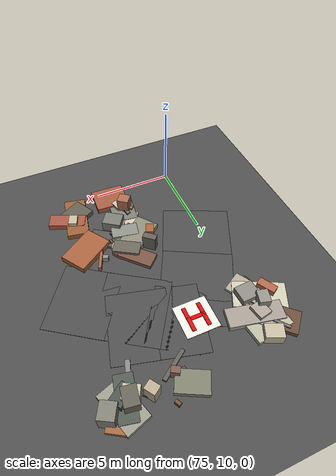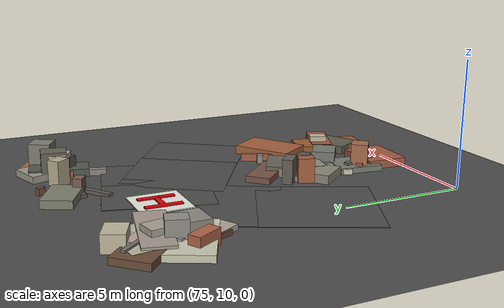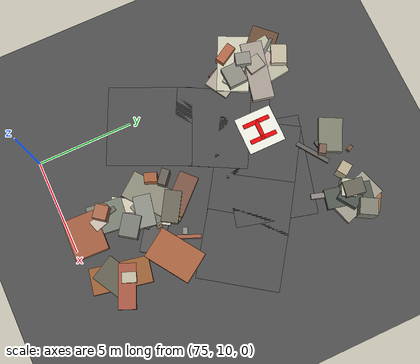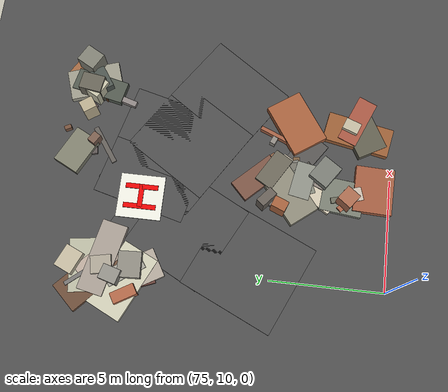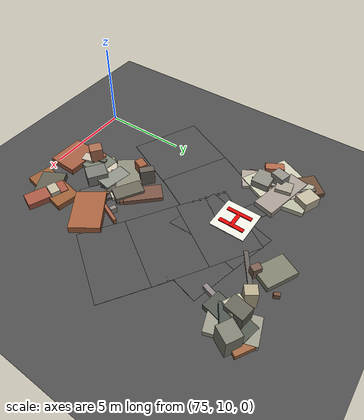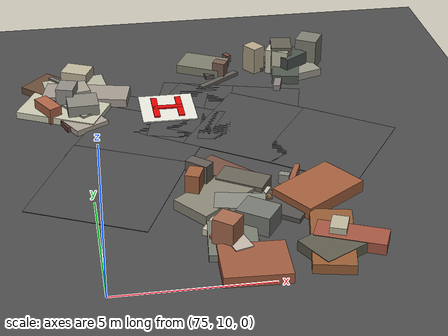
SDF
<sdf version="1.6">
 <world name="navitas_arena">
  <model name="ground_plane">
   <static>true</static>
   <link name="link">
    <collision name="collision">
     <geometry><plane><normal>0 0 1</normal><size>400 400</size></plane></geometry>
     <surface><friction><ode><mu>0.800</mu><mu2>0.800</mu2></ode></friction></surface>
    </collision>
    <visual name="visual">
     <cast_shadows>false</cast_shadows>
     <geometry><plane><normal>0 0 1</normal><size>400 400</size></plane></geometry>
     <material>
      <specular>0.04 0.04 0.04 1</specular>
      <script>
       <uri>file://media/materials/scripts/navitas_asphalt.material</uri>
       <name>Navitas/RealArenaAsphalt</name>
      </script>
     </material>
    </visual>
   </link>
  </model>
  <model name="road_zor_1_18">
   <static>true</static>
   <pose>75.516 15.912 0.040 0 0 1.142</pose>
   <link name="link">
    <collision name="col"><geometry><box><size>4.392 4.200 0.020</size></box></geometry></collision>
    <visual name="vis">
     <geometry><box><size>4.392 4.200 0.020</size></box></geometry>
     <material>
      <specular>0.04 0.04 0.04 1</specular>
      <script>
       <uri>file://media/materials/scripts/navitas_asphalt.material</uri>
       <name>Navitas/RealArenaAsphalt</name>
      </script>
     </material>
    </visual>
   </link>
  </model>
  <model name="road_zor_1_19">
   <static>true</static>
   <pose>76.927 18.815 0.040 0 0 1.090</pose>
   <link name="link">
    <collision name="col"><geometry><box><size>3.866 4.200 0.020</size></box></geometry></collision>
    <visual name="vis">
     <geometry><box><size>3.866 4.200 0.020</size></box></geometry>
     <material>
      <specular>0.04 0.04 0.04 1</specular>
      <script>
       <uri>file://media/materials/scripts/navitas_asphalt.material</uri>
       <name>Navitas/RealArenaAsphalt</name>
      </script>
     </material>
    </visual>
   </link>
  </model>
  <model name="road_zor_1_20">
   <static>true</static>
   <pose>77.845 20.565 0.040 0 0 1.083</pose>
   <link name="link">
    <collision name="col"><geometry><box><size>1.886 4.200 0.020</size></box></geometry></collision>
    <visual name="vis">
     <geometry><box><size>1.886 4.200 0.020</size></box></geometry>
     <material>
      <specular>0.04 0.04 0.04 1</specular>
      <script>
       <uri>file://media/materials/scripts/navitas_asphalt.material</uri>
       <name>Navitas/RealArenaAsphalt</name>
      </script>
     </material>
    </visual>
   </link>
  </model>
  <model name="road_zor_2_17">
   <static>true</static>
   <pose>83.343 17.578 0.040 0 0 2.539</pose>
   <link name="link">
    <collision name="col"><geometry><box><size>3.519 4.200 0.020</size></box></geometry></collision>
    <visual name="vis">
     <geometry><box><size>3.519 4.200 0.020</size></box></geometry>
     <material>
      <specular>0.04 0.04 0.04 1</specular>
      <script>
       <uri>file://media/materials/scripts/navitas_asphalt.material</uri>
       <name>Navitas/RealArenaAsphalt</name>
      </script>
     </material>
    </visual>
   </link>
  </model>
  <model name="road_zor_2_18">
   <static>true</static>
   <pose>81.043 19.110 0.040 0 0 2.567</pose>
   <link name="link">
    <collision name="col"><geometry><box><size>3.809 4.200 0.020</size></box></geometry></collision>
    <visual name="vis">
     <geometry><box><size>3.809 4.200 0.020</size></box></geometry>
     <material>
      <specular>0.04 0.04 0.04 1</specular>
      <script>
       <uri>file://media/materials/scripts/navitas_asphalt.material</uri>
       <name>Navitas/RealArenaAsphalt</name>
      </script>
     </material>
    </visual>
   </link>
  </model>
  <model name="road_zor_2_19">
   <static>true</static>
   <pose>78.949 20.450 0.040 0 0 2.579</pose>
   <link name="link">
    <collision name="col"><geometry><box><size>2.964 4.200 0.020</size></box></geometry></collision>
    <visual name="vis">
     <geometry><box><size>2.964 4.200 0.020</size></box></geometry>
     <material>
      <specular>0.04 0.04 0.04 1</specular>
      <script>
       <uri>file://media/materials/scripts/navitas_asphalt.material</uri>
       <name>Navitas/RealArenaAsphalt</name>
      </script>
     </material>
    </visual>
   </link>
  </model>
  <model name="road_zor_3_27">
   <static>true</static>
   <pose>81.046 20.220 0.040 0 0 2.888</pose>
   <link name="link">
    <collision name="col"><geometry><box><size>3.449 4.200 0.020</size></box></geometry></collision>
    <visual name="vis">
     <geometry><box><size>3.449 4.200 0.020</size></box></geometry>
     <material>
      <specular>0.04 0.04 0.04 1</specular>
      <script>
       <uri>file://media/materials/scripts/navitas_asphalt.material</uri>
       <name>Navitas/RealArenaAsphalt</name>
      </script>
     </material>
    </visual>
   </link>
  </model>
  <model name="road_zor_3_28">
   <static>true</static>
   <pose>78.944 20.770 0.040 0 0 2.883</pose>
   <link name="link">
    <collision name="col"><geometry><box><size>2.696 4.200 0.020</size></box></geometry></collision>
    <visual name="vis">
     <geometry><box><size>2.696 4.200 0.020</size></box></geometry>
     <material>
      <specular>0.04 0.04 0.04 1</specular>
      <script>
       <uri>file://media/materials/scripts/navitas_asphalt.material</uri>
       <name>Navitas/RealArenaAsphalt</name>
      </script>
     </material>
    </visual>
   </link>
  </model>
  <model name="deb_zor_9">
   <static>true</static>
   <pose>79.143 15.304 0.000 0 0 0</pose>
   <link name="link">
    <collision name="col_0">
     <pose>-0.777 -0.560 0.061 0.000 0.000 -0.586</pose>
     <geometry><box><size>0.272 0.231 0.122</size></box></geometry>
    </collision>
    <visual name="vis_0">
     <pose>-0.777 -0.560 0.061 0.000 0.000 -0.586</pose>
     <geometry><box><size>0.272 0.231 0.122</size></box></geometry>
     <material>
      <ambient>0.51 0.47 0.43 1</ambient>
      <diffuse>0.56 0.51 0.46 1</diffuse>
      <specular>0.05 0.05 0.045 1</specular>
     </material>
    </visual>
    <collision name="col_1">
     <pose>0.351 0.621 0.128 0.000 0.000 -0.811</pose>
     <geometry><box><size>2.161 1.004 0.256</size></box></geometry>
    </collision>
    <visual name="vis_1">
     <pose>0.351 0.621 0.128 0.000 0.000 -0.811</pose>
     <geometry><box><size>2.161 1.004 0.256</size></box></geometry>
     <material>
      <ambient>0.45 0.31 0.25 1</ambient>
      <diffuse>0.48 0.33 0.27 1</diffuse>
      <specular>0.05 0.05 0.045 1</specular>
     </material>
    </visual>
    <collision name="col_2">
     <pose>-0.678 0.145 0.497 0.000 0.000 -0.711</pose>
     <geometry><box><size>0.813 0.415 0.994</size></box></geometry>
    </collision>
    <visual name="vis_2">
     <pose>-0.678 0.145 0.497 0.000 0.000 -0.711</pose>
     <geometry><box><size>0.813 0.415 0.994</size></box></geometry>
     <material>
      <ambient>0.37 0.35 0.32 1</ambient>
      <diffuse>0.40 0.37 0.34 1</diffuse>
      <specular>0.05 0.05 0.045 1</specular>
     </material>
    </visual>
    <collision name="col_3">
     <pose>-0.808 -0.139 0.113 0.000 0.000 -0.683</pose>
     <geometry><box><size>0.226 0.174 0.225</size></box></geometry>
    </collision>
    <visual name="vis_3">
     <pose>-0.808 -0.139 0.113 0.000 0.000 -0.683</pose>
     <geometry><box><size>0.226 0.174 0.225</size></box></geometry>
     <material>
      <ambient>0.48 0.46 0.45 1</ambient>
      <diffuse>0.52 0.50 0.49 1</diffuse>
      <specular>0.05 0.05 0.045 1</specular>
     </material>
    </visual>
    <collision name="col_4">
     <pose>0.744 -0.083 0.209 0.000 0.000 -0.546</pose>
     <geometry><box><size>1.639 0.873 0.417</size></box></geometry>
    </collision>
    <visual name="vis_4">
     <pose>0.744 -0.083 0.209 0.000 0.000 -0.546</pose>
     <geometry><box><size>1.639 0.873 0.417</size></box></geometry>
     <material>
      <ambient>0.39 0.37 0.33 1</ambient>
      <diffuse>0.42 0.40 0.35 1</diffuse>
      <specular>0.05 0.05 0.045 1</specular>
     </material>
    </visual>
    <collision name="col_5">
     <pose>-0.922 -0.452 0.499 0.000 0.000 -0.389</pose>
     <geometry><box><size>0.479 0.646 0.997</size></box></geometry>
    </collision>
    <visual name="vis_5">
     <pose>-0.922 -0.452 0.499 0.000 0.000 -0.389</pose>
     <geometry><box><size>0.479 0.646 0.997</size></box></geometry>
     <material>
      <ambient>0.60 0.35 0.22 1</ambient>
      <diffuse>0.64 0.38 0.24 1</diffuse>
      <specular>0.05 0.05 0.045 1</specular>
     </material>
    </visual>
   </link>
  </model>
  <model name="deb_zor_138">
   <static>true</static>
   <pose>79.585 14.010 0.000 0 0 0</pose>
   <link name="link">
    <collision name="col_0">
     <pose>-0.081 -0.888 0.137 0.000 0.000 -0.403</pose>
     <geometry><box><size>0.435 0.454 0.273</size></box></geometry>
    </collision>
    <visual name="vis_0">
     <pose>-0.081 -0.888 0.137 0.000 0.000 -0.403</pose>
     <geometry><box><size>0.435 0.454 0.273</size></box></geometry>
     <material>
      <ambient>0.52 0.48 0.45 1</ambient>
      <diffuse>0.56 0.52 0.49 1</diffuse>
      <specular>0.05 0.05 0.045 1</specular>
     </material>
    </visual>
    <collision name="col_1">
     <pose>-0.141 -0.272 0.111 0.000 0.000 1.011</pose>
     <geometry><box><size>3.142 1.066 0.221</size></box></geometry>
    </collision>
    <visual name="vis_1">
     <pose>-0.141 -0.272 0.111 0.000 0.000 1.011</pose>
     <geometry><box><size>3.142 1.066 0.221</size></box></geometry>
     <material>
      <ambient>0.75 0.71 0.63 1</ambient>
      <diffuse>0.81 0.77 0.69 1</diffuse>
      <specular>0.05 0.05 0.045 1</specular>
     </material>
    </visual>
    <collision name="col_2">
     <pose>-0.728 0.439 0.182 0.000 0.000 0.664</pose>
     <geometry><box><size>2.426 1.426 0.363</size></box></geometry>
    </collision>
    <visual name="vis_2">
     <pose>-0.728 0.439 0.182 0.000 0.000 0.664</pose>
     <geometry><box><size>2.426 1.426 0.363</size></box></geometry>
     <material>
      <ambient>0.51 0.50 0.43 1</ambient>
      <diffuse>0.55 0.54 0.47 1</diffuse>
      <specular>0.05 0.05 0.045 1</specular>
     </material>
    </visual>
    <collision name="col_3">
     <pose>0.852 0.250 0.114 0.000 0.000 1.624</pose>
     <geometry><box><size>0.289 0.395 0.227</size></box></geometry>
    </collision>
    <visual name="vis_3">
     <pose>0.852 0.250 0.114 0.000 0.000 1.624</pose>
     <geometry><box><size>0.289 0.395 0.227</size></box></geometry>
     <material>
      <ambient>0.44 0.33 0.23 1</ambient>
      <diffuse>0.47 0.36 0.25 1</diffuse>
      <specular>0.05 0.05 0.045 1</specular>
     </material>
    </visual>
    <collision name="col_4">
     <pose>-0.286 0.372 0.130 0.000 0.000 1.945</pose>
     <geometry><box><size>1.850 1.216 0.260</size></box></geometry>
    </collision>
    <visual name="vis_4">
     <pose>-0.286 0.372 0.130 0.000 0.000 1.945</pose>
     <geometry><box><size>1.850 1.216 0.260</size></box></geometry>
     <material>
      <ambient>0.49 0.49 0.44 1</ambient>
      <diffuse>0.52 0.53 0.48 1</diffuse>
      <specular>0.05 0.05 0.045 1</specular>
     </material>
    </visual>
    <collision name="col_5">
     <pose>-0.348 0.099 0.127 0.000 0.000 0.071</pose>
     <geometry><box><size>2.286 1.078 0.255</size></box></geometry>
    </collision>
    <visual name="vis_5">
     <pose>-0.348 0.099 0.127 0.000 0.000 0.071</pose>
     <geometry><box><size>2.286 1.078 0.255</size></box></geometry>
     <material>
      <ambient>0.43 0.42 0.38 1</ambient>
      <diffuse>0.46 0.45 0.41 1</diffuse>
      <specular>0.05 0.05 0.045 1</specular>
     </material>
    </visual>
    <collision name="col_6">
     <pose>-0.348 -0.159 0.182 0.000 0.000 0.605</pose>
     <geometry><box><size>0.593 0.478 0.365</size></box></geometry>
    </collision>
    <visual name="vis_6">
     <pose>-0.348 -0.159 0.182 0.000 0.000 0.605</pose>
     <geometry><box><size>0.593 0.478 0.365</size></box></geometry>
     <material>
      <ambient>0.65 0.62 0.53 1</ambient>
      <diffuse>0.70 0.67 0.57 1</diffuse>
      <specular>0.05 0.05 0.045 1</specular>
     </material>
    </visual>
   </link>
  </model>
  <model name="deb_zor_161">
   <static>true</static>
   <pose>82.241 11.623 0.000 0 0 0</pose>
   <link name="link">
    <collision name="col_0">
     <pose>-0.251 -0.050 0.166 0.000 0.000 1.375</pose>
     <geometry><box><size>2.993 1.327 0.331</size></box></geometry>
    </collision>
    <visual name="vis_0">
     <pose>-0.251 -0.050 0.166 0.000 0.000 1.375</pose>
     <geometry><box><size>2.993 1.327 0.331</size></box></geometry>
     <material>
      <ambient>0.56 0.34 0.19 1</ambient>
      <diffuse>0.60 0.37 0.21 1</diffuse>
      <specular>0.05 0.05 0.045 1</specular>
     </material>
    </visual>
    <collision name="col_1">
     <pose>0.361 0.024 0.184 0.000 0.000 -0.404</pose>
     <geometry><box><size>2.251 0.879 0.367</size></box></geometry>
    </collision>
    <visual name="vis_1">
     <pose>0.361 0.024 0.184 0.000 0.000 -0.404</pose>
     <geometry><box><size>2.251 0.879 0.367</size></box></geometry>
     <material>
      <ambient>0.60 0.32 0.24 1</ambient>
      <diffuse>0.65 0.34 0.26 1</diffuse>
      <specular>0.05 0.05 0.045 1</specular>
     </material>
    </visual>
    <collision name="col_2">
     <pose>-0.329 -0.366 0.175 0.000 0.000 0.502</pose>
     <geometry><box><size>1.617 1.380 0.350</size></box></geometry>
    </collision>
    <visual name="vis_2">
     <pose>-0.329 -0.366 0.175 0.000 0.000 0.502</pose>
     <geometry><box><size>1.617 1.380 0.350</size></box></geometry>
     <material>
      <ambient>0.36 0.34 0.29 1</ambient>
      <diffuse>0.38 0.37 0.31 1</diffuse>
      <specular>0.05 0.05 0.045 1</specular>
     </material>
    </visual>
    <collision name="col_3">
     <pose>0.030 0.292 0.295 0.000 0.000 -0.369</pose>
     <geometry><box><size>0.529 0.724 0.590</size></box></geometry>
    </collision>
    <visual name="vis_3">
     <pose>0.030 0.292 0.295 0.000 0.000 -0.369</pose>
     <geometry><box><size>0.529 0.724 0.590</size></box></geometry>
     <material>
      <ambient>0.69 0.67 0.57 1</ambient>
      <diffuse>0.75 0.72 0.62 1</diffuse>
      <specular>0.05 0.05 0.045 1</specular>
     </material>
    </visual>
   </link>
  </model>
  <model name="deb_zor_171">
   <static>true</static>
   <pose>82.592 23.635 0.000 0 0 0</pose>
   <link name="link">
    <collision name="col_0">
     <pose>-0.767 0.206 0.516 0.000 0.000 0.599</pose>
     <geometry><box><size>0.543 0.628 1.032</size></box></geometry>
    </collision>
    <visual name="vis_0">
     <pose>-0.767 0.206 0.516 0.000 0.000 0.599</pose>
     <geometry><box><size>0.543 0.628 1.032</size></box></geometry>
     <material>
      <ambient>0.67 0.62 0.51 1</ambient>
      <diffuse>0.72 0.67 0.55 1</diffuse>
      <specular>0.05 0.05 0.045 1</specular>
     </material>
    </visual>
    <collision name="col_1">
     <pose>0.275 -0.066 0.093 0.000 0.000 1.810</pose>
     <geometry><box><size>1.557 0.167 0.186</size></box></geometry>
    </collision>
    <visual name="vis_1">
     <pose>0.275 -0.066 0.093 0.000 0.000 1.810</pose>
     <geometry><box><size>1.557 0.167 0.186</size></box></geometry>
     <material>
      <ambient>0.53 0.52 0.48 1</ambient>
      <diffuse>0.57 0.56 0.51 1</diffuse>
      <specular>0.05 0.05 0.045 1</specular>
     </material>
    </visual>
    <collision name="col_2">
     <pose>0.301 0.177 0.547 0.000 0.000 1.418</pose>
     <geometry><box><size>1.013 0.782 1.094</size></box></geometry>
    </collision>
    <visual name="vis_2">
     <pose>0.301 0.177 0.547 0.000 0.000 1.418</pose>
     <geometry><box><size>1.013 0.782 1.094</size></box></geometry>
     <material>
      <ambient>0.37 0.36 0.31 1</ambient>
      <diffuse>0.40 0.39 0.34 1</diffuse>
      <specular>0.05 0.05 0.045 1</specular>
     </material>
    </visual>
    <collision name="col_3">
     <pose>0.035 -0.910 0.130 0.000 0.000 1.274</pose>
     <geometry><box><size>1.899 0.263 0.260</size></box></geometry>
    </collision>
    <visual name="vis_3">
     <pose>0.035 -0.910 0.130 0.000 0.000 1.274</pose>
     <geometry><box><size>1.899 0.263 0.260</size></box></geometry>
     <material>
      <ambient>0.51 0.48 0.47 1</ambient>
      <diffuse>0.55 0.52 0.51 1</diffuse>
      <specular>0.05 0.05 0.045 1</specular>
     </material>
    </visual>
    <collision name="col_4">
     <pose>-0.532 0.166 0.066 0.000 0.000 2.351</pose>
     <geometry><box><size>0.416 0.215 0.131</size></box></geometry>
    </collision>
    <visual name="vis_4">
     <pose>-0.532 0.166 0.066 0.000 0.000 2.351</pose>
     <geometry><box><size>0.416 0.215 0.131</size></box></geometry>
     <material>
      <ambient>0.41 0.35 0.34 1</ambient>
      <diffuse>0.44 0.38 0.37 1</diffuse>
      <specular>0.05 0.05 0.045 1</specular>
     </material>
    </visual>
   </link>
  </model>
  <model name="deb_zor_210">
   <static>true</static>
   <pose>79.303 11.783 0.000 0 0 0</pose>
   <link name="link">
    <collision name="col_0">
     <pose>-0.328 -0.057 0.172 0.000 0.000 1.800</pose>
     <geometry><box><size>1.809 0.252 0.345</size></box></geometry>
    </collision>
    <visual name="vis_0">
     <pose>-0.328 -0.057 0.172 0.000 0.000 1.800</pose>
     <geometry><box><size>1.809 0.252 0.345</size></box></geometry>
     <material>
      <ambient>0.39 0.39 0.33 1</ambient>
      <diffuse>0.42 0.42 0.36 1</diffuse>
      <specular>0.05 0.05 0.045 1</specular>
     </material>
    </visual>
    <collision name="col_1">
     <pose>0.134 -1.039 0.178 0.000 0.000 3.102</pose>
     <geometry><box><size>2.087 1.718 0.356</size></box></geometry>
    </collision>
    <visual name="vis_1">
     <pose>0.134 -1.039 0.178 0.000 0.000 3.102</pose>
     <geometry><box><size>2.087 1.718 0.356</size></box></geometry>
     <material>
      <ambient>0.58 0.33 0.24 1</ambient>
      <diffuse>0.63 0.36 0.25 1</diffuse>
      <specular>0.05 0.05 0.045 1</specular>
     </material>
    </visual>
    <collision name="col_2">
     <pose>-0.483 0.142 0.551 0.000 0.000 2.488</pose>
     <geometry><box><size>0.717 0.680 1.101</size></box></geometry>
    </collision>
    <visual name="vis_2">
     <pose>-0.483 0.142 0.551 0.000 0.000 2.488</pose>
     <geometry><box><size>0.717 0.680 1.101</size></box></geometry>
     <material>
      <ambient>0.61 0.39 0.29 1</ambient>
      <diffuse>0.66 0.42 0.31 1</diffuse>
      <specular>0.05 0.05 0.045 1</specular>
     </material>
    </visual>
    <collision name="col_3">
     <pose>-0.288 0.302 0.120 0.000 0.000 1.457</pose>
     <geometry><box><size>1.852 1.539 0.240</size></box></geometry>
    </collision>
    <visual name="vis_3">
     <pose>-0.288 0.302 0.120 0.000 0.000 1.457</pose>
     <geometry><box><size>1.852 1.539 0.240</size></box></geometry>
     <material>
      <ambient>0.43 0.45 0.41 1</ambient>
      <diffuse>0.47 0.49 0.44 1</diffuse>
      <specular>0.05 0.05 0.045 1</specular>
     </material>
    </visual>
    <collision name="col_4">
     <pose>-0.179 -0.175 0.195 0.000 0.000 1.867</pose>
     <geometry><box><size>0.741 0.605 0.390</size></box></geometry>
    </collision>
    <visual name="vis_4">
     <pose>-0.179 -0.175 0.195 0.000 0.000 1.867</pose>
     <geometry><box><size>0.741 0.605 0.390</size></box></geometry>
     <material>
      <ambient>0.72 0.68 0.62 1</ambient>
      <diffuse>0.78 0.73 0.67 1</diffuse>
      <specular>0.05 0.05 0.045 1</specular>
     </material>
    </visual>
    <collision name="col_5">
     <pose>-0.147 0.076 0.117 0.000 0.000 3.383</pose>
     <geometry><box><size>1.236 0.263 0.234</size></box></geometry>
    </collision>
    <visual name="vis_5">
     <pose>-0.147 0.076 0.117 0.000 0.000 3.383</pose>
     <geometry><box><size>1.236 0.263 0.234</size></box></geometry>
     <material>
      <ambient>0.56 0.55 0.45 1</ambient>
      <diffuse>0.60 0.59 0.49 1</diffuse>
      <specular>0.05 0.05 0.045 1</specular>
     </material>
    </visual>
    <collision name="col_6">
     <pose>-0.845 0.384 0.172 0.000 0.000 3.964</pose>
     <geometry><box><size>0.268 0.220 0.343</size></box></geometry>
    </collision>
    <visual name="vis_6">
     <pose>-0.845 0.384 0.172 0.000 0.000 3.964</pose>
     <geometry><box><size>0.268 0.220 0.343</size></box></geometry>
     <material>
      <ambient>0.60 0.35 0.25 1</ambient>
      <diffuse>0.65 0.38 0.27 1</diffuse>
      <specular>0.05 0.05 0.045 1</specular>
     </material>
    </visual>
   </link>
  </model>
  <model name="deb_zor_255">
   <static>true</static>
   <pose>74.512 21.406 0.000 0 0 0</pose>
   <link name="link">
    <collision name="col_0">
     <pose>0.169 -0.631 0.106 0.000 0.000 -1.045</pose>
     <geometry><box><size>2.286 1.322 0.213</size></box></geometry>
    </collision>
    <visual name="vis_0">
     <pose>0.169 -0.631 0.106 0.000 0.000 -1.045</pose>
     <geometry><box><size>2.286 1.322 0.213</size></box></geometry>
     <material>
      <ambient>0.64 0.60 0.55 1</ambient>
      <diffuse>0.69 0.65 0.60 1</diffuse>
      <specular>0.05 0.05 0.045 1</specular>
     </material>
    </visual>
    <collision name="col_1">
     <pose>-0.798 -0.354 0.301 0.000 0.000 -1.043</pose>
     <geometry><box><size>1.063 0.489 0.602</size></box></geometry>
    </collision>
    <visual name="vis_1">
     <pose>-0.798 -0.354 0.301 0.000 0.000 -1.043</pose>
     <geometry><box><size>1.063 0.489 0.602</size></box></geometry>
     <material>
      <ambient>0.64 0.37 0.26 1</ambient>
      <diffuse>0.69 0.40 0.28 1</diffuse>
      <specular>0.05 0.05 0.045 1</specular>
     </material>
    </visual>
    <collision name="col_2">
     <pose>0.225 -0.199 0.163 0.000 0.000 -0.963</pose>
     <geometry><box><size>1.752 0.696 0.326</size></box></geometry>
    </collision>
    <visual name="vis_2">
     <pose>0.225 -0.199 0.163 0.000 0.000 -0.963</pose>
     <geometry><box><size>1.752 0.696 0.326</size></box></geometry>
     <material>
      <ambient>0.60 0.59 0.56 1</ambient>
      <diffuse>0.65 0.64 0.60 1</diffuse>
      <specular>0.05 0.05 0.045 1</specular>
     </material>
    </visual>
    <collision name="col_3">
     <pose>-0.078 0.299 0.463 0.000 0.000 1.288</pose>
     <geometry><box><size>0.789 0.642 0.927</size></box></geometry>
    </collision>
    <visual name="vis_3">
     <pose>-0.078 0.299 0.463 0.000 0.000 1.288</pose>
     <geometry><box><size>0.789 0.642 0.927</size></box></geometry>
     <material>
      <ambient>0.53 0.52 0.49 1</ambient>
      <diffuse>0.57 0.56 0.53 1</diffuse>
      <specular>0.05 0.05 0.045 1</specular>
     </material>
    </visual>
    <collision name="col_4">
     <pose>-0.235 -0.163 0.126 0.000 0.000 -0.449</pose>
     <geometry><box><size>3.032 1.672 0.252</size></box></geometry>
    </collision>
    <visual name="vis_4">
     <pose>-0.235 -0.163 0.126 0.000 0.000 -0.449</pose>
     <geometry><box><size>3.032 1.672 0.252</size></box></geometry>
     <material>
      <ambient>0.74 0.73 0.65 1</ambient>
      <diffuse>0.80 0.79 0.70 1</diffuse>
      <specular>0.05 0.05 0.045 1</specular>
     </material>
    </visual>
    <collision name="col_5">
     <pose>-0.265 0.119 0.112 0.000 0.000 -1.203</pose>
     <geometry><box><size>2.136 0.240 0.224</size></box></geometry>
    </collision>
    <visual name="vis_5">
     <pose>-0.265 0.119 0.112 0.000 0.000 -1.203</pose>
     <geometry><box><size>2.136 0.240 0.224</size></box></geometry>
     <material>
      <ambient>0.41 0.29 0.23 1</ambient>
      <diffuse>0.44 0.31 0.25 1</diffuse>
      <specular>0.05 0.05 0.045 1</specular>
     </material>
    </visual>
    <collision name="col_6">
     <pose>0.447 -0.435 0.330 0.000 0.000 0.048</pose>
     <geometry><box><size>1.120 0.994 0.659</size></box></geometry>
    </collision>
    <visual name="vis_6">
     <pose>0.447 -0.435 0.330 0.000 0.000 0.048</pose>
     <geometry><box><size>1.120 0.994 0.659</size></box></geometry>
     <material>
      <ambient>0.51 0.50 0.47 1</ambient>
      <diffuse>0.55 0.54 0.50 1</diffuse>
      <specular>0.05 0.05 0.045 1</specular>
     </material>
    </visual>
   </link>
  </model>
  <model name="deb_zor_260">
   <static>true</static>
   <pose>81.445 14.736 0.000 0 0 0</pose>
   <link name="link">
    <collision name="col_0">
     <pose>0.752 -0.345 0.210 0.000 0.000 0.595</pose>
     <geometry><box><size>2.516 1.670 0.419</size></box></geometry>
    </collision>
    <visual name="vis_0">
     <pose>0.752 -0.345 0.210 0.000 0.000 0.595</pose>
     <geometry><box><size>2.516 1.670 0.419</size></box></geometry>
     <material>
      <ambient>0.61 0.35 0.22 1</ambient>
      <diffuse>0.65 0.38 0.24 1</diffuse>
      <specular>0.05 0.05 0.045 1</specular>
     </material>
    </visual>
    <collision name="col_1">
     <pose>-1.177 -0.415 0.127 0.000 0.000 0.299</pose>
     <geometry><box><size>0.389 0.399 0.254</size></box></geometry>
    </collision>
    <visual name="vis_1">
     <pose>-1.177 -0.415 0.127 0.000 0.000 0.299</pose>
     <geometry><box><size>0.389 0.399 0.254</size></box></geometry>
     <material>
      <ambient>0.46 0.45 0.42 1</ambient>
      <diffuse>0.49 0.48 0.45 1</diffuse>
      <specular>0.05 0.05 0.045 1</specular>
     </material>
    </visual>
    <collision name="col_2">
     <pose>-0.809 -0.728 0.081 0.000 0.000 2.538</pose>
     <geometry><box><size>2.354 1.173 0.162</size></box></geometry>
    </collision>
    <visual name="vis_2">
     <pose>-0.809 -0.728 0.081 0.000 0.000 2.538</pose>
     <geometry><box><size>2.354 1.173 0.162</size></box></geometry>
     <material>
      <ambient>0.31 0.31 0.29 1</ambient>
      <diffuse>0.34 0.33 0.32 1</diffuse>
      <specular>0.05 0.05 0.045 1</specular>
     </material>
    </visual>
    <collision name="col_3">
     <pose>-0.153 0.612 0.170 0.000 0.000 2.716</pose>
     <geometry><box><size>0.349 0.238 0.341</size></box></geometry>
    </collision>
    <visual name="vis_3">
     <pose>-0.153 0.612 0.170 0.000 0.000 2.716</pose>
     <geometry><box><size>0.349 0.238 0.341</size></box></geometry>
     <material>
      <ambient>0.51 0.50 0.47 1</ambient>
      <diffuse>0.56 0.54 0.51 1</diffuse>
      <specular>0.05 0.05 0.045 1</specular>
     </material>
    </visual>
    <collision name="col_4">
     <pose>-0.841 0.579 0.121 0.000 0.000 2.434</pose>
     <geometry><box><size>0.221 0.176 0.241</size></box></geometry>
    </collision>
    <visual name="vis_4">
     <pose>-0.841 0.579 0.121 0.000 0.000 2.434</pose>
     <geometry><box><size>0.221 0.176 0.241</size></box></geometry>
     <material>
      <ambient>0.49 0.34 0.25 1</ambient>
      <diffuse>0.53 0.37 0.27 1</diffuse>
      <specular>0.05 0.05 0.045 1</specular>
     </material>
    </visual>
    <collision name="col_5">
     <pose>0.002 0.247 0.150 0.000 0.000 1.175</pose>
     <geometry><box><size>2.119 0.176 0.300</size></box></geometry>
    </collision>
    <visual name="vis_5">
     <pose>0.002 0.247 0.150 0.000 0.000 1.175</pose>
     <geometry><box><size>2.119 0.176 0.300</size></box></geometry>
     <material>
      <ambient>0.59 0.35 0.25 1</ambient>
      <diffuse>0.64 0.38 0.27 1</diffuse>
      <specular>0.05 0.05 0.045 1</specular>
     </material>
    </visual>
   </link>
  </model>
  <model name="deb_zor_283">
   <static>true</static>
   <pose>74.381 21.667 0.000 0 0 0</pose>
   <link name="link">
    <collision name="col_0">
     <pose>-0.011 0.906 0.132 0.000 0.000 2.382</pose>
     <geometry><box><size>3.062 1.429 0.263</size></box></geometry>
    </collision>
    <visual name="vis_0">
     <pose>-0.011 0.906 0.132 0.000 0.000 2.382</pose>
     <geometry><box><size>3.062 1.429 0.263</size></box></geometry>
     <material>
      <ambient>0.39 0.27 0.21 1</ambient>
      <diffuse>0.42 0.30 0.22 1</diffuse>
      <specular>0.05 0.05 0.045 1</specular>
     </material>
    </visual>
    <collision name="col_1">
     <pose>0.466 0.520 0.294 0.000 0.000 3.336</pose>
     <geometry><box><size>0.763 0.888 0.588</size></box></geometry>
    </collision>
    <visual name="vis_1">
     <pose>0.466 0.520 0.294 0.000 0.000 3.336</pose>
     <geometry><box><size>0.763 0.888 0.588</size></box></geometry>
     <material>
      <ambient>0.62 0.60 0.53 1</ambient>
      <diffuse>0.67 0.64 0.58 1</diffuse>
      <specular>0.05 0.05 0.045 1</specular>
     </material>
    </visual>
    <collision name="col_2">
     <pose>0.565 0.756 0.146 0.000 0.000 2.358</pose>
     <geometry><box><size>1.818 0.972 0.293</size></box></geometry>
    </collision>
    <visual name="vis_2">
     <pose>0.565 0.756 0.146 0.000 0.000 2.358</pose>
     <geometry><box><size>1.818 0.972 0.293</size></box></geometry>
     <material>
      <ambient>0.67 0.61 0.56 1</ambient>
      <diffuse>0.73 0.66 0.61 1</diffuse>
      <specular>0.05 0.05 0.045 1</specular>
     </material>
    </visual>
    <collision name="col_3">
     <pose>0.439 -0.657 0.066 0.000 0.000 2.897</pose>
     <geometry><box><size>0.202 0.277 0.132</size></box></geometry>
    </collision>
    <visual name="vis_3">
     <pose>0.439 -0.657 0.066 0.000 0.000 2.897</pose>
     <geometry><box><size>0.202 0.277 0.132</size></box></geometry>
     <material>
      <ambient>0.54 0.54 0.47 1</ambient>
      <diffuse>0.58 0.58 0.50 1</diffuse>
      <specular>0.05 0.05 0.045 1</specular>
     </material>
    </visual>
    <collision name="col_4">
     <pose>0.191 -0.684 0.095 0.000 0.000 1.941</pose>
     <geometry><box><size>2.060 1.271 0.190</size></box></geometry>
    </collision>
    <visual name="vis_4">
     <pose>0.191 -0.684 0.095 0.000 0.000 1.941</pose>
     <geometry><box><size>2.060 1.271 0.190</size></box></geometry>
     <material>
      <ambient>0.38 0.24 0.21 1</ambient>
      <diffuse>0.41 0.26 0.23 1</diffuse>
      <specular>0.05 0.05 0.045 1</specular>
     </material>
    </visual>
    <collision name="col_5">
     <pose>0.242 -0.265 0.125 0.000 0.000 2.553</pose>
     <geometry><box><size>2.155 0.128 0.251</size></box></geometry>
    </collision>
    <visual name="vis_5">
     <pose>0.242 -0.265 0.125 0.000 0.000 2.553</pose>
     <geometry><box><size>2.155 0.128 0.251</size></box></geometry>
     <material>
      <ambient>0.42 0.28 0.24 1</ambient>
      <diffuse>0.45 0.30 0.26 1</diffuse>
      <specular>0.05 0.05 0.045 1</specular>
     </material>
    </visual>
   </link>
  </model>
  <model name="deb_zor_288">
   <static>true</static>
   <pose>75.100 22.881 0.000 0 0 0</pose>
   <link name="link">
    <collision name="col_0">
     <pose>0.066 -0.673 0.179 0.000 0.000 2.924</pose>
     <geometry><box><size>3.158 1.146 0.359</size></box></geometry>
    </collision>
    <visual name="vis_0">
     <pose>0.066 -0.673 0.179 0.000 0.000 2.924</pose>
     <geometry><box><size>3.158 1.146 0.359</size></box></geometry>
     <material>
      <ambient>0.61 0.56 0.53 1</ambient>
      <diffuse>0.65 0.61 0.57 1</diffuse>
      <specular>0.05 0.05 0.045 1</specular>
     </material>
    </visual>
    <collision name="col_1">
     <pose>-0.315 -0.015 0.135 0.000 0.000 3.274</pose>
     <geometry><box><size>2.314 1.505 0.270</size></box></geometry>
    </collision>
    <visual name="vis_1">
     <pose>-0.315 -0.015 0.135 0.000 0.000 3.274</pose>
     <geometry><box><size>2.314 1.505 0.270</size></box></geometry>
     <material>
      <ambient>0.67 0.67 0.58 1</ambient>
      <diffuse>0.72 0.72 0.63 1</diffuse>
      <specular>0.05 0.05 0.045 1</specular>
     </material>
    </visual>
    <collision name="col_2">
     <pose>-0.199 0.689 0.326 0.000 0.000 2.720</pose>
     <geometry><box><size>1.026 0.817 0.651</size></box></geometry>
    </collision>
    <visual name="vis_2">
     <pose>-0.199 0.689 0.326 0.000 0.000 2.720</pose>
     <geometry><box><size>1.026 0.817 0.651</size></box></geometry>
     <material>
      <ambient>0.71 0.67 0.58 1</ambient>
      <diffuse>0.76 0.72 0.62 1</diffuse>
      <specular>0.05 0.05 0.045 1</specular>
     </material>
    </visual>
    <collision name="col_3">
     <pose>-0.498 -0.142 0.170 0.000 0.000 2.254</pose>
     <geometry><box><size>2.323 0.169 0.340</size></box></geometry>
    </collision>
    <visual name="vis_3">
     <pose>-0.498 -0.142 0.170 0.000 0.000 2.254</pose>
     <geometry><box><size>2.323 0.169 0.340</size></box></geometry>
     <material>
      <ambient>0.43 0.41 0.41 1</ambient>
      <diffuse>0.46 0.45 0.44 1</diffuse>
      <specular>0.05 0.05 0.045 1</specular>
     </material>
    </visual>
   </link>
  </model>
  <model name="deb_zor_319">
   <static>true</static>
   <pose>80.524 23.893 0.000 0 0 0</pose>
   <link name="link">
    <collision name="col_0">
     <pose>-0.522 -0.489 0.074 0.000 0.000 0.198</pose>
     <geometry><box><size>0.370 0.288 0.149</size></box></geometry>
    </collision>
    <visual name="vis_0">
     <pose>-0.522 -0.489 0.074 0.000 0.000 0.198</pose>
     <geometry><box><size>0.370 0.288 0.149</size></box></geometry>
     <material>
      <ambient>0.34 0.31 0.29 1</ambient>
      <diffuse>0.36 0.33 0.32 1</diffuse>
      <specular>0.05 0.05 0.045 1</specular>
     </material>
    </visual>
    <collision name="col_1">
     <pose>-0.663 0.253 0.168 0.000 0.000 -0.471</pose>
     <geometry><box><size>1.770 1.222 0.337</size></box></geometry>
    </collision>
    <visual name="vis_1">
     <pose>-0.663 0.253 0.168 0.000 0.000 -0.471</pose>
     <geometry><box><size>1.770 1.222 0.337</size></box></geometry>
     <material>
      <ambient>0.46 0.46 0.40 1</ambient>
      <diffuse>0.50 0.50 0.43 1</diffuse>
      <specular>0.05 0.05 0.045 1</specular>
     </material>
    </visual>
    <collision name="col_2">
     <pose>-0.107 -0.510 0.329 0.000 0.000 -0.547</pose>
     <geometry><box><size>0.486 0.370 0.658</size></box></geometry>
    </collision>
    <visual name="vis_2">
     <pose>-0.107 -0.510 0.329 0.000 0.000 -0.547</pose>
     <geometry><box><size>0.486 0.370 0.658</size></box></geometry>
     <material>
      <ambient>0.44 0.34 0.29 1</ambient>
      <diffuse>0.48 0.37 0.31 1</diffuse>
      <specular>0.05 0.05 0.045 1</specular>
     </material>
    </visual>
    <collision name="col_3">
     <pose>-0.229 -0.945 0.074 0.000 0.000 0.614</pose>
     <geometry><box><size>1.878 0.223 0.147</size></box></geometry>
    </collision>
    <visual name="vis_3">
     <pose>-0.229 -0.945 0.074 0.000 0.000 0.614</pose>
     <geometry><box><size>1.878 0.223 0.147</size></box></geometry>
     <material>
      <ambient>0.36 0.34 0.33 1</ambient>
      <diffuse>0.39 0.37 0.35 1</diffuse>
      <specular>0.05 0.05 0.045 1</specular>
     </material>
    </visual>
    <collision name="col_4">
     <pose>0.380 0.850 0.145 0.000 0.000 -1.085</pose>
     <geometry><box><size>0.308 0.184 0.290</size></box></geometry>
    </collision>
    <visual name="vis_4">
     <pose>0.380 0.850 0.145 0.000 0.000 -1.085</pose>
     <geometry><box><size>0.308 0.184 0.290</size></box></geometry>
     <material>
      <ambient>0.42 0.30 0.22 1</ambient>
      <diffuse>0.46 0.32 0.24 1</diffuse>
      <specular>0.05 0.05 0.045 1</specular>
     </material>
    </visual>
   </link>
  </model>
  <model name="deb_zor_348">
   <static>true</static>
   <pose>83.465 23.714 0.000 0 0 0</pose>
   <link name="link">
    <collision name="col_0">
     <pose>-0.672 -0.094 0.490 0.000 0.000 2.658</pose>
     <geometry><box><size>0.877 0.759 0.980</size></box></geometry>
    </collision>
    <visual name="vis_0">
     <pose>-0.672 -0.094 0.490 0.000 0.000 2.658</pose>
     <geometry><box><size>0.877 0.759 0.980</size></box></geometry>
     <material>
      <ambient>0.72 0.70 0.61 1</ambient>
      <diffuse>0.77 0.76 0.66 1</diffuse>
      <specular>0.05 0.05 0.045 1</specular>
     </material>
    </visual>
    <collision name="col_1">
     <pose>-0.165 0.147 0.145 0.000 0.000 1.891</pose>
     <geometry><box><size>2.407 1.406 0.291</size></box></geometry>
    </collision>
    <visual name="vis_1">
     <pose>-0.165 0.147 0.145 0.000 0.000 1.891</pose>
     <geometry><box><size>2.407 1.406 0.291</size></box></geometry>
     <material>
      <ambient>0.56 0.55 0.50 1</ambient>
      <diffuse>0.61 0.60 0.54 1</diffuse>
      <specular>0.05 0.05 0.045 1</specular>
     </material>
    </visual>
    <collision name="col_2">
     <pose>-0.239 -0.225 0.386 0.000 0.000 3.739</pose>
     <geometry><box><size>1.064 0.724 0.771</size></box></geometry>
    </collision>
    <visual name="vis_2">
     <pose>-0.239 -0.225 0.386 0.000 0.000 3.739</pose>
     <geometry><box><size>1.064 0.724 0.771</size></box></geometry>
     <material>
      <ambient>0.28 0.31 0.28 1</ambient>
      <diffuse>0.30 0.33 0.31 1</diffuse>
      <specular>0.05 0.05 0.045 1</specular>
     </material>
    </visual>
    <collision name="col_3">
     <pose>0.602 0.209 0.170 0.000 0.000 2.519</pose>
     <geometry><box><size>0.519 0.407 0.341</size></box></geometry>
    </collision>
    <visual name="vis_3">
     <pose>0.602 0.209 0.170 0.000 0.000 2.519</pose>
     <geometry><box><size>0.519 0.407 0.341</size></box></geometry>
     <material>
      <ambient>0.28 0.31 0.25 1</ambient>
      <diffuse>0.30 0.34 0.28 1</diffuse>
      <specular>0.05 0.05 0.045 1</specular>
     </material>
    </visual>
    <collision name="col_4">
     <pose>0.600 0.325 0.590 0.000 0.000 2.633</pose>
     <geometry><box><size>0.838 0.892 1.179</size></box></geometry>
    </collision>
    <visual name="vis_4">
     <pose>0.600 0.325 0.590 0.000 0.000 2.633</pose>
     <geometry><box><size>0.838 0.892 1.179</size></box></geometry>
     <material>
      <ambient>0.46 0.46 0.42 1</ambient>
      <diffuse>0.50 0.50 0.45 1</diffuse>
      <specular>0.05 0.05 0.045 1</specular>
     </material>
    </visual>
    <collision name="col_5">
     <pose>-0.397 -0.133 0.168 0.000 0.000 4.496</pose>
     <geometry><box><size>2.392 1.015 0.337</size></box></geometry>
    </collision>
    <visual name="vis_5">
     <pose>-0.397 -0.133 0.168 0.000 0.000 4.496</pose>
     <geometry><box><size>2.392 1.015 0.337</size></box></geometry>
     <material>
      <ambient>0.30 0.32 0.29 1</ambient>
      <diffuse>0.32 0.35 0.31 1</diffuse>
      <specular>0.05 0.05 0.045 1</specular>
     </material>
    </visual>
    <collision name="col_6">
     <pose>-0.015 0.175 0.140 0.000 0.000 4.169</pose>
     <geometry><box><size>2.311 1.010 0.280</size></box></geometry>
    </collision>
    <visual name="vis_6">
     <pose>-0.015 0.175 0.140 0.000 0.000 4.169</pose>
     <geometry><box><size>2.311 1.010 0.280</size></box></geometry>
     <material>
      <ambient>0.59 0.38 0.24 1</ambient>
      <diffuse>0.63 0.41 0.26 1</diffuse>
      <specular>0.05 0.05 0.045 1</specular>
     </material>
    </visual>
   </link>
  </model>
  <model name="deb_zor_362">
   <static>true</static>
   <pose>79.783 13.643 0.000 0 0 0</pose>
   <link name="link">
    <collision name="col_0">
     <pose>-0.248 -0.230 0.120 0.000 0.000 -0.670</pose>
     <geometry><box><size>1.521 0.137 0.240</size></box></geometry>
    </collision>
    <visual name="vis_0">
     <pose>-0.248 -0.230 0.120 0.000 0.000 -0.670</pose>
     <geometry><box><size>1.521 0.137 0.240</size></box></geometry>
     <material>
      <ambient>0.49 0.48 0.46 1</ambient>
      <diffuse>0.53 0.52 0.49 1</diffuse>
      <specular>0.05 0.05 0.045 1</specular>
     </material>
    </visual>
    <collision name="col_1">
     <pose>0.180 -0.683 0.338 0.000 0.000 -0.605</pose>
     <geometry><box><size>1.149 0.941 0.677</size></box></geometry>
    </collision>
    <visual name="vis_1">
     <pose>0.180 -0.683 0.338 0.000 0.000 -0.605</pose>
     <geometry><box><size>1.149 0.941 0.677</size></box></geometry>
     <material>
      <ambient>0.43 0.44 0.42 1</ambient>
      <diffuse>0.47 0.48 0.45 1</diffuse>
      <specular>0.05 0.05 0.045 1</specular>
     </material>
    </visual>
    <collision name="col_2">
     <pose>0.427 0.000 0.147 0.000 0.000 0.845</pose>
     <geometry><box><size>0.449 0.292 0.293</size></box></geometry>
    </collision>
    <visual name="vis_2">
     <pose>0.427 0.000 0.147 0.000 0.000 0.845</pose>
     <geometry><box><size>0.449 0.292 0.293</size></box></geometry>
     <material>
      <ambient>0.29 0.27 0.25 1</ambient>
      <diffuse>0.31 0.29 0.27 1</diffuse>
      <specular>0.05 0.05 0.045 1</specular>
     </material>
    </visual>
    <collision name="col_3">
     <pose>-0.242 0.254 0.187 0.000 0.000 -0.192</pose>
     <geometry><box><size>1.635 0.910 0.373</size></box></geometry>
    </collision>
    <visual name="vis_3">
     <pose>-0.242 0.254 0.187 0.000 0.000 -0.192</pose>
     <geometry><box><size>1.635 0.910 0.373</size></box></geometry>
     <material>
      <ambient>0.51 0.52 0.48 1</ambient>
      <diffuse>0.55 0.56 0.52 1</diffuse>
      <specular>0.05 0.05 0.045 1</specular>
     </material>
    </visual>
   </link>
  </model>
  <model name="hbpad_zor">
   <static>true</static>
   <pose>78.076 21.000 0.070 0 0 0.000</pose>
   <link name="link">
    <collision name="col"><geometry><box><size>2.000 2.000 0.040</size></box></geometry></collision>
    <visual name="vis">
     <geometry><box><size>2.000 2.000 0.040</size></box></geometry>
     <material>
      <ambient>0.92 0.92 0.88 1</ambient>
      <diffuse>0.92 0.92 0.88 1</diffuse>
      <specular>0.04 0.04 0.04 1</specular>
     </material>
    </visual>
   </link>
  </model>
  <model name="H_zor_l">
   <static>true</static>
   <pose>77.626 21.000 0.100 0 0 0.000</pose>
   <link name="link">
    <collision name="col"><geometry><box><size>0.220 1.450 0.080</size></box></geometry></collision>
    <visual name="vis">
     <geometry><box><size>0.220 1.450 0.080</size></box></geometry>
     <material>
      <ambient>0.90 0.02 0.02 1</ambient>
      <diffuse>0.90 0.02 0.02 1</diffuse>
      <specular>0.04 0.04 0.04 1</specular>
     </material>
    </visual>
   </link>
  </model>
  <model name="H_zor_r">
   <static>true</static>
   <pose>78.526 21.000 0.100 0 0 0.000</pose>
   <link name="link">
    <collision name="col"><geometry><box><size>0.220 1.450 0.080</size></box></geometry></collision>
    <visual name="vis">
     <geometry><box><size>0.220 1.450 0.080</size></box></geometry>
     <material>
      <ambient>0.90 0.02 0.02 1</ambient>
      <diffuse>0.90 0.02 0.02 1</diffuse>
      <specular>0.04 0.04 0.04 1</specular>
     </material>
    </visual>
   </link>
  </model>
  <model name="H_zor_b">
   <static>true</static>
   <pose>78.076 21.000 0.100 0 0 0.000</pose>
   <link name="link">
    <collision name="col"><geometry><box><size>1.100 0.220 0.080</size></box></geometry></collision>
    <visual name="vis">
     <geometry><box><size>1.100 0.220 0.080</size></box></geometry>
     <material>
      <ambient>0.90 0.02 0.02 1</ambient>
      <diffuse>0.90 0.02 0.02 1</diffuse>
      <specular>0.04 0.04 0.04 1</specular>
     </material>
    </visual>
   </link>
  </model>
 </world>
</sdf>
